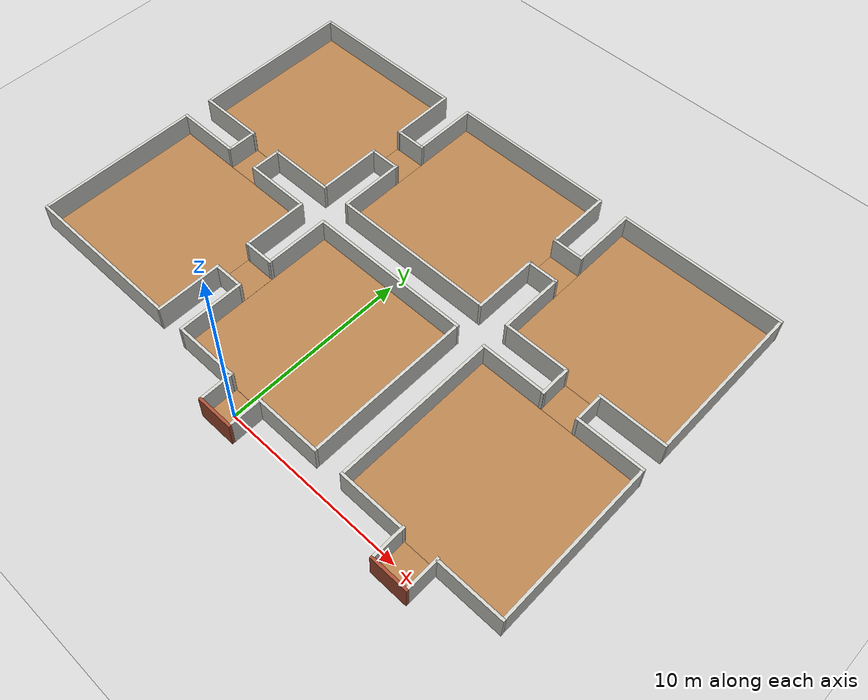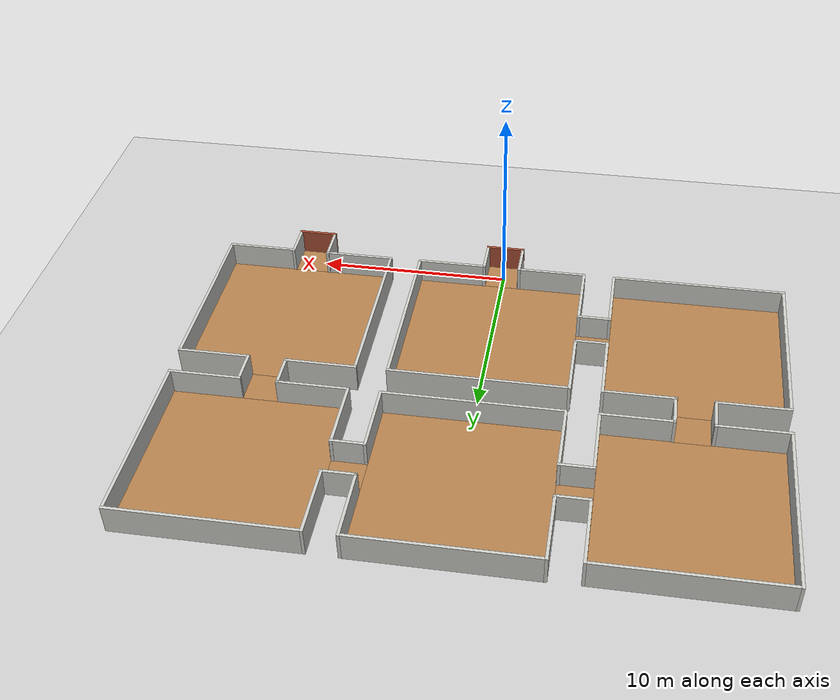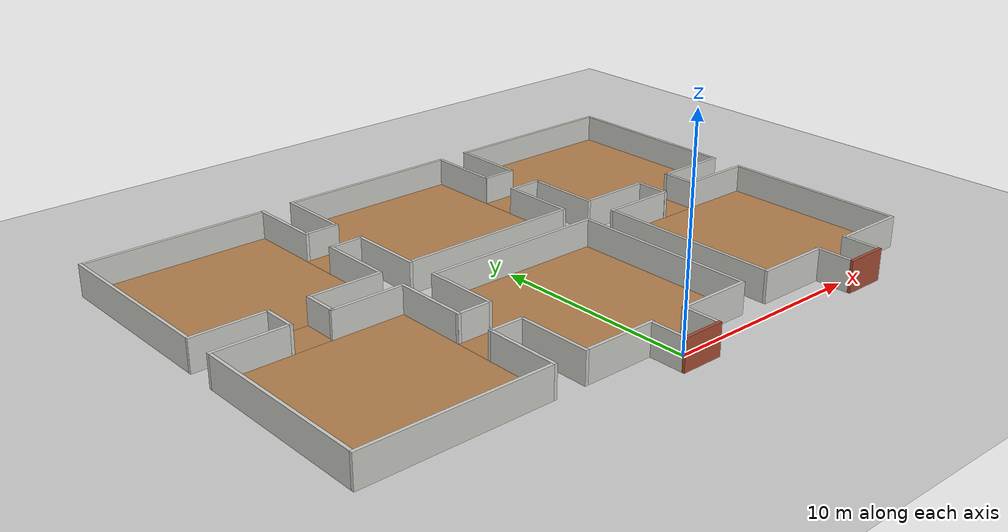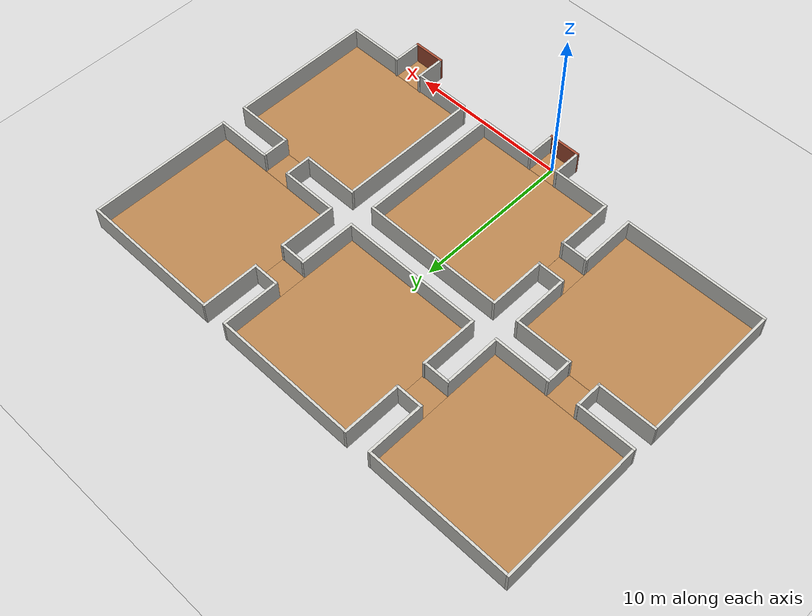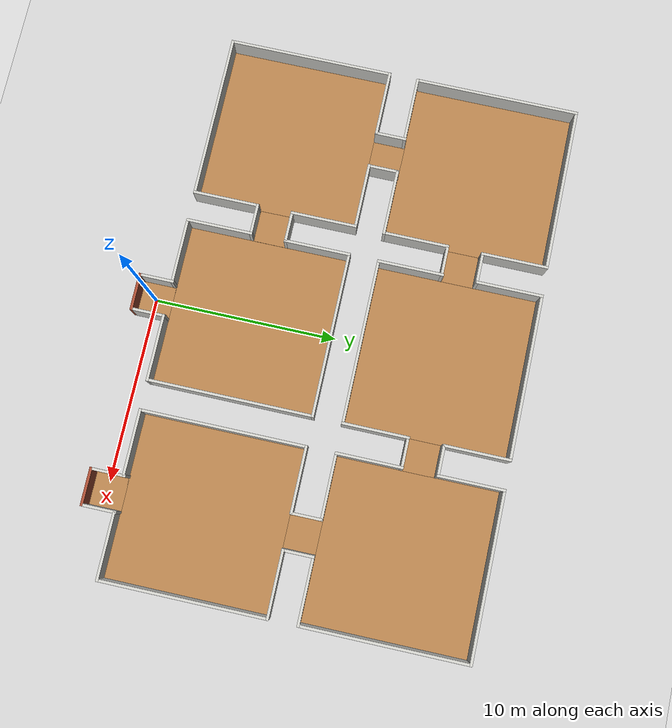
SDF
<sdf version="1.6">
 <world name="default">
  <light name="sun" type="directional">
   <pose>0 0 10 0 -0 0</pose>
   <diffuse>0.8 0.8 0.8 1</diffuse>
   <specular>0.1 0.1 0.1 1</specular>
   <attenuation>
    <range>1000</range>
    <constant>0.9</constant>
    <linear>0.01</linear>
    <quadratic>0.001</quadratic>
   </attenuation>
   <direction>-0.5 0.5 -1</direction>
  </light>
  <model name="ground_plane">
   <static>1</static>
   <link name="link">
    <collision name="collision">
     <geometry><plane><normal>0 0 1</normal><size>100 100</size></plane></geometry>
     <surface><friction><ode><mu>100</mu><mu2>50</mu2></ode></friction></surface>
    </collision>
    <visual name="visual">
     <cast_shadows>0</cast_shadows>
     <geometry><plane><normal>0 0 1</normal><size>100 100</size></plane></geometry>
     <material>
      <script><uri>file://media/materials/scripts/gazebo.material</uri><name>Gazebo/Grey</name></script>
     </material>
    </visual>
   </link>
  </model>
  <gravity>0 0 -9.8</gravity>
  <magnetic_field>6e-06 2.3e-05 -4.2e-05</magnetic_field>
  <atmosphere type="adiabatic"/>
  <physics name="default_physics" default="0" type="ode">
   <max_step_size>0.001</max_step_size>
   <real_time_factor>1</real_time_factor>
   <real_time_update_rate>1000</real_time_update_rate>
  </physics>
  <scene><ambient>0.4 0.4 0.4 1</ambient><background>0.7 0.7 0.7 1</background><shadows>1</shadows></scene>
  <spherical_coordinates>
   <surface_model>EARTH_WGS84</surface_model>
   <latitude_deg>0</latitude_deg>
   <longitude_deg>0</longitude_deg>
   <elevation>0</elevation>
   <heading_deg>0</heading_deg>
  </spherical_coordinates>
  <model name="nerve_end">
   <pose>0 0 0 0 -0 3.14159</pose>
   <link name="Wall_0">
    <collision name="Wall_0_Collision">
     <geometry><box><size>1.76 1.75 0.2</size></box></geometry>
     <pose>0 0 0.1 0 -0 0</pose>
    </collision>
    <visual name="Wall_0_Visual">
     <pose>0 0 0.1 0 -0 0</pose>
     <geometry><box><size>1.76 1.75 0.2</size></box></geometry>
     <material>
      <script><uri>file://media/materials/scripts/gazebo.material</uri><name>Gazebo/Wood</name></script>
      <ambient>1 0.764706 0.305882 1</ambient>
     </material>
    </visual>
    <pose>-0.009 -0.064 0 0 -0 0</pose>
   </link>
   <link name="Wall_2">
    <collision name="Wall_2_Collision">
     <geometry><box><size>1.8 0.15 1.5</size></box></geometry>
     <pose>0 0 0.75 0 -0 0</pose>
    </collision>
    <visual name="Wall_2_Visual">
     <pose>0 0 0.75 0 -0 0</pose>
     <geometry><box><size>1.8 0.15 1.5</size></box></geometry>
     <material>
      <script><uri>file://media/materials/scripts/gazebo.material</uri><name>Gazebo/CeilingTiled</name></script>
      <ambient>1 0.764706 0.305882 1</ambient>
     </material>
    </visual>
    <pose>-0.95 -0.065 0 0 0 -1.5708</pose>
   </link>
   <link name="Wall_4">
    <collision name="Wall_4_Collision">
     <geometry><box><size>1.8 0.15 1.5</size></box></geometry>
     <pose>0 0 0.75 0 -0 0</pose>
    </collision>
    <visual name="Wall_4_Visual">
     <pose>0 0 0.75 0 -0 0</pose>
     <geometry><box><size>1.8 0.15 1.5</size></box></geometry>
     <material>
      <script><uri>file://media/materials/scripts/gazebo.material</uri><name>Gazebo/CeilingTiled</name></script>
      <ambient>1 0.764706 0.305882 1</ambient>
     </material>
    </visual>
    <pose>0.95 -0.065 0 0 0 -1.5708</pose>
   </link>
   <link name="Wall_6">
    <collision name="Wall_6_Collision">
     <geometry><box><size>2.05 0.15 1.5</size></box></geometry>
     <pose>0 0 0.75 0 -0 0</pose>
    </collision>
    <visual name="Wall_6_Visual">
     <pose>0 0 0.75 0 -0 0</pose>
     <geometry><box><size>2.05 0.15 1.5</size></box></geometry>
     <material>
      <script><uri>file://media/materials/scripts/gazebo.material</uri><name>Gazebo/Bricks</name></script>
      <ambient>0.996078 0.47451 0.0196078 1</ambient>
     </material>
    </visual>
    <pose>0 0.89 0 0 -0 0</pose>
   </link>
   <static>1</static>
  </model>
  <model name="nerve_room_5x5ARENA_right">
   <pose>0.01035 5.32527 0 0 -0 0</pose>
   <link name="Wall_11">
    <collision name="Wall_11_Collision">
     <geometry><box><size>8.75 0.15 1.5</size></box></geometry>
     <pose>0 0 0.75 0 -0 0</pose>
    </collision>
    <visual name="Wall_11_Visual">
     <pose>0 0 0.75 0 -0 0</pose>
     <geometry><box><size>8.75 0.15 1.5</size></box></geometry>
     <material>
      <script><uri>file://media/materials/scripts/gazebo.material</uri><name>Gazebo/CeilingTiled</name></script>
      <ambient>1 0.764706 0.305882 1</ambient>
     </material>
    </visual>
    <pose>4.44912 -0.000431 0 0 0 -1.5708</pose>
   </link>
   <link name="Wall_13">
    <collision name="Wall_13_Collision">
     <geometry><box><size>3.65 0.15 1.5</size></box></geometry>
     <pose>0 0 0.75 0 -0 0</pose>
    </collision>
    <visual name="Wall_13_Visual">
     <pose>0 0 0.75 0 -0 0</pose>
     <geometry><box><size>3.65 0.15 1.5</size></box></geometry>
     <material>
      <script><uri>file://media/materials/scripts/gazebo.material</uri><name>Gazebo/CeilingTiled</name></script>
      <ambient>1 0.764706 0.305882 1</ambient>
     </material>
    </visual>
    <pose>-4.44961 2.70076 0 0 0 -1.5708</pose>
   </link>
   <link name="Wall_15">
    <collision name="Wall_15_Collision">
     <geometry><box><size>3.65 0.15 1.5</size></box></geometry>
     <pose>0 0 0.75 0 -0 0</pose>
    </collision>
    <visual name="Wall_15_Visual">
     <pose>0 0 0.75 0 -0 0</pose>
     <geometry><box><size>3.65 0.15 1.5</size></box></geometry>
     <material>
      <script><uri>file://media/materials/scripts/gazebo.material</uri><name>Gazebo/CeilingTiled</name></script>
      <ambient>1 0.764706 0.305882 1</ambient>
     </material>
    </visual>
    <pose>2.69961 -4.45076 0 0 -0 0</pose>
   </link>
   <link name="Wall_17">
    <collision name="Wall_17_Collision">
     <geometry><box><size>8.90028 0.15 1.5</size></box></geometry>
     <pose>0 0 0.75 0 -0 0</pose>
    </collision>
    <visual name="Wall_17_Visual">
     <pose>0 0 0.75 0 -0 0</pose>
     <geometry><box><size>8.90028 0.15 1.5</size></box></geometry>
     <material>
      <script><uri>file://media/materials/scripts/gazebo.material</uri><name>Gazebo/CeilingTiled</name></script>
      <ambient>1 0.764706 0.305882 1</ambient>
     </material>
    </visual>
    <pose>0.074346 4.45022 0 0 0 -6.5e-05</pose>
   </link>
   <link name="Wall_21">
    <collision name="Wall_21_Collision">
     <geometry><box><size>3.5 0.15 1.5</size></box></geometry>
     <pose>0 0 0.75 0 -0 0</pose>
    </collision>
    <visual name="Wall_21_Visual">
     <pose>0 0 0.75 0 -0 0</pose>
     <geometry><box><size>3.5 0.15 1.5</size></box></geometry>
     <material>
      <script><uri>file://media/materials/scripts/gazebo.material</uri><name>Gazebo/CeilingTiled</name></script>
      <ambient>1 0.764706 0.305882 1</ambient>
     </material>
    </visual>
    <pose>-2.62383 -4.4498 0 0 -0 0</pose>
   </link>
   <link name="Wall_25">
    <collision name="Wall_25_Collision">
     <geometry><box><size>3.65 0.15 1.5</size></box></geometry>
     <pose>0 0 0.75 0 -0 0</pose>
    </collision>
    <visual name="Wall_25_Visual">
     <pose>0 0 0.75 0 -0 0</pose>
     <geometry><box><size>3.65 0.15 1.5</size></box></geometry>
     <material>
      <script><uri>file://media/materials/scripts/gazebo.material</uri><name>Gazebo/CeilingTiled</name></script>
      <ambient>1 0.764706 0.305882 1</ambient>
     </material>
    </visual>
    <pose>-4.44941 -2.70044 0 0 0 -1.5708</pose>
   </link>
   <link name="Wall_6">
    <collision name="Wall_6_Collision">
     <geometry><box><size>8.76 8.75 0.2</size></box></geometry>
     <pose>0 0 0.1 0 -0 0</pose>
    </collision>
    <visual name="Wall_6_Visual">
     <pose>0 0 0.1 0 -0 0</pose>
     <geometry><box><size>8.76 8.75 0.2</size></box></geometry>
     <material>
      <script><uri>file://media/materials/scripts/gazebo.material</uri><name>Gazebo/Wood</name></script>
      <ambient>1 0.764706 0.305882 1</ambient>
     </material>
    </visual>
    <pose>0.000485 -0.004173 0 0 -0 1.5708</pose>
   </link>
   <static>1</static>
  </model>
  <model name="nerve_straight">
   <pose>-5.23966 5.3216 0 0 0 -1.5708</pose>
   <link name="Wall_0">
    <collision name="Wall_0_Collision">
     <geometry><box><size>1.76 1.75 0.2</size></box></geometry>
     <pose>0 0 0.1 0 -0 0</pose>
    </collision>
    <visual name="Wall_0_Visual">
     <pose>0 0 0.1 0 -0 0</pose>
     <geometry><box><size>1.76 1.75 0.2</size></box></geometry>
     <material>
      <script><uri>file://media/materials/scripts/gazebo.material</uri><name>Gazebo/Wood</name></script>
      <ambient>1 0.764706 0.305882 1</ambient>
     </material>
    </visual>
    <pose>0.005 -0.002 0 0 -0 3.14159</pose>
   </link>
   <link name="Wall_2">
    <collision name="Wall_2_Collision">
     <geometry><box><size>1.75 0.15 1.5</size></box></geometry>
     <pose>0 0 0.75 0 -0 0</pose>
    </collision>
    <visual name="Wall_2_Visual">
     <pose>0 0 0.75 0 -0 0</pose>
     <geometry><box><size>1.75 0.15 1.5</size></box></geometry>
     <material>
      <script><uri>file://media/materials/scripts/gazebo.material</uri><name>Gazebo/CeilingTiled</name></script>
      <ambient>1 0.764706 0.305882 1</ambient>
     </material>
    </visual>
    <pose>-0.955 0.002 0 0 0 -1.5708</pose>
   </link>
   <link name="Wall_4">
    <collision name="Wall_4_Collision">
     <geometry><box><size>1.75 0.15 1.5</size></box></geometry>
     <pose>0 0 0.75 0 -0 0</pose>
    </collision>
    <visual name="Wall_4_Visual">
     <pose>0 0 0.75 0 -0 0</pose>
     <geometry><box><size>1.75 0.15 1.5</size></box></geometry>
     <material>
      <script><uri>file://media/materials/scripts/gazebo.material</uri><name>Gazebo/CeilingTiled</name></script>
      <ambient>1 0.764706 0.305882 1</ambient>
     </material>
    </visual>
    <pose>0.955 0.002 0 0 0 -1.5708</pose>
   </link>
   <static>1</static>
  </model>
  <model name="nerve_room_5x5ARENA_right_0">
   <pose>-10.485 5.32444 0 0 -0 3.14159</pose>
   <link name="Wall_11">
    <collision name="Wall_11_Collision">
     <geometry><box><size>8.75 0.15 1.5</size></box></geometry>
     <pose>0 0 0.75 0 -0 0</pose>
    </collision>
    <visual name="Wall_11_Visual">
     <pose>0 0 0.75 0 -0 0</pose>
     <geometry><box><size>8.75 0.15 1.5</size></box></geometry>
     <material>
      <script><uri>file://media/materials/scripts/gazebo.material</uri><name>Gazebo/CeilingTiled</name></script>
      <ambient>1 0.764706 0.305882 1</ambient>
     </material>
    </visual>
    <pose>4.44912 -0.000431 0 0 0 -1.5708</pose>
   </link>
   <link name="Wall_13">
    <collision name="Wall_13_Collision">
     <geometry><box><size>3.65 0.15 1.5</size></box></geometry>
     <pose>0 0 0.75 0 -0 0</pose>
    </collision>
    <visual name="Wall_13_Visual">
     <pose>0 0 0.75 0 -0 0</pose>
     <geometry><box><size>3.65 0.15 1.5</size></box></geometry>
     <material>
      <script><uri>file://media/materials/scripts/gazebo.material</uri><name>Gazebo/CeilingTiled</name></script>
      <ambient>1 0.764706 0.305882 1</ambient>
     </material>
    </visual>
    <pose>-4.44961 2.70076 0 0 0 -1.5708</pose>
   </link>
   <link name="Wall_15">
    <collision name="Wall_15_Collision">
     <geometry><box><size>3.65 0.15 1.5</size></box></geometry>
     <pose>0 0 0.75 0 -0 0</pose>
    </collision>
    <visual name="Wall_15_Visual">
     <pose>0 0 0.75 0 -0 0</pose>
     <geometry><box><size>3.65 0.15 1.5</size></box></geometry>
     <material>
      <script><uri>file://media/materials/scripts/gazebo.material</uri><name>Gazebo/CeilingTiled</name></script>
      <ambient>1 0.764706 0.305882 1</ambient>
     </material>
    </visual>
    <pose>2.69961 -4.45076 0 0 -0 0</pose>
   </link>
   <link name="Wall_17">
    <collision name="Wall_17_Collision">
     <geometry><box><size>8.90028 0.15 1.5</size></box></geometry>
     <pose>0 0 0.75 0 -0 0</pose>
    </collision>
    <visual name="Wall_17_Visual">
     <pose>0 0 0.75 0 -0 0</pose>
     <geometry><box><size>8.90028 0.15 1.5</size></box></geometry>
     <material>
      <script><uri>file://media/materials/scripts/gazebo.material</uri><name>Gazebo/CeilingTiled</name></script>
      <ambient>1 0.764706 0.305882 1</ambient>
     </material>
    </visual>
    <pose>0.074346 4.45022 0 0 0 -6.5e-05</pose>
   </link>
   <link name="Wall_21">
    <collision name="Wall_21_Collision">
     <geometry><box><size>3.5 0.15 1.5</size></box></geometry>
     <pose>0 0 0.75 0 -0 0</pose>
    </collision>
    <visual name="Wall_21_Visual">
     <pose>0 0 0.75 0 -0 0</pose>
     <geometry><box><size>3.5 0.15 1.5</size></box></geometry>
     <material>
      <script><uri>file://media/materials/scripts/gazebo.material</uri><name>Gazebo/CeilingTiled</name></script>
      <ambient>1 0.764706 0.305882 1</ambient>
     </material>
    </visual>
    <pose>-2.62383 -4.4498 0 0 -0 0</pose>
   </link>
   <link name="Wall_25">
    <collision name="Wall_25_Collision">
     <geometry><box><size>3.65 0.15 1.5</size></box></geometry>
     <pose>0 0 0.75 0 -0 0</pose>
    </collision>
    <visual name="Wall_25_Visual">
     <pose>0 0 0.75 0 -0 0</pose>
     <geometry><box><size>3.65 0.15 1.5</size></box></geometry>
     <material>
      <script><uri>file://media/materials/scripts/gazebo.material</uri><name>Gazebo/CeilingTiled</name></script>
      <ambient>1 0.764706 0.305882 1</ambient>
     </material>
    </visual>
    <pose>-4.44941 -2.70044 0 0 0 -1.5708</pose>
   </link>
   <link name="Wall_6">
    <collision name="Wall_6_Collision">
     <geometry><box><size>8.76 8.75 0.2</size></box></geometry>
     <pose>0 0 0.1 0 -0 0</pose>
    </collision>
    <visual name="Wall_6_Visual">
     <pose>0 0 0.1 0 -0 0</pose>
     <geometry><box><size>8.76 8.75 0.2</size></box></geometry>
     <material>
      <script><uri>file://media/materials/scripts/gazebo.material</uri><name>Gazebo/Wood</name></script>
      <ambient>1 0.764706 0.305882 1</ambient>
     </material>
    </visual>
    <pose>0.000485 -0.004173 0 0 -0 1.5708</pose>
   </link>
   <static>1</static>
  </model>
  <model name="nerve_straight_clone">
   <pose>-10.4732 10.573 0 0 -0 0</pose>
   <link name="Wall_0">
    <collision name="Wall_0_Collision">
     <geometry><box><size>1.76 1.75 0.2</size></box></geometry>
     <pose>0 0 0.1 0 -0 0</pose>
    </collision>
    <visual name="Wall_0_Visual">
     <pose>0 0 0.1 0 -0 0</pose>
     <geometry><box><size>1.76 1.75 0.2</size></box></geometry>
     <material>
      <script><uri>file://media/materials/scripts/gazebo.material</uri><name>Gazebo/Wood</name></script>
      <ambient>1 0.764706 0.305882 1</ambient>
     </material>
    </visual>
    <pose>0.005 -0.002 0 0 -0 3.14159</pose>
   </link>
   <link name="Wall_2">
    <collision name="Wall_2_Collision">
     <geometry><box><size>1.75 0.15 1.5</size></box></geometry>
     <pose>0 0 0.75 0 -0 0</pose>
    </collision>
    <visual name="Wall_2_Visual">
     <pose>0 0 0.75 0 -0 0</pose>
     <geometry><box><size>1.75 0.15 1.5</size></box></geometry>
     <material>
      <script><uri>file://media/materials/scripts/gazebo.material</uri><name>Gazebo/CeilingTiled</name></script>
      <ambient>1 0.764706 0.305882 1</ambient>
     </material>
    </visual>
    <pose>-0.955 0.002 0 0 0 -1.5708</pose>
   </link>
   <link name="Wall_4">
    <collision name="Wall_4_Collision">
     <geometry><box><size>1.75 0.15 1.5</size></box></geometry>
     <pose>0 0 0.75 0 -0 0</pose>
    </collision>
    <visual name="Wall_4_Visual">
     <pose>0 0 0.75 0 -0 0</pose>
     <geometry><box><size>1.75 0.15 1.5</size></box></geometry>
     <material>
      <script><uri>file://media/materials/scripts/gazebo.material</uri><name>Gazebo/CeilingTiled</name></script>
      <ambient>1 0.764706 0.305882 1</ambient>
     </material>
    </visual>
    <pose>0.955 0.002 0 0 0 -1.5708</pose>
   </link>
   <static>1</static>
  </model>
  <model name="nerve_room_5x5ARENA_right_clone">
   <pose>-10.4631 15.8033 0 0 -0 1.5708</pose>
   <link name="Wall_11">
    <collision name="Wall_11_Collision">
     <geometry><box><size>8.75 0.15 1.5</size></box></geometry>
     <pose>0 0 0.75 0 -0 0</pose>
    </collision>
    <visual name="Wall_11_Visual">
     <pose>0 0 0.75 0 -0 0</pose>
     <geometry><box><size>8.75 0.15 1.5</size></box></geometry>
     <material>
      <script><uri>file://media/materials/scripts/gazebo.material</uri><name>Gazebo/CeilingTiled</name></script>
      <ambient>1 0.764706 0.305882 1</ambient>
     </material>
    </visual>
    <pose>4.44912 -0.000431 0 0 0 -1.5708</pose>
   </link>
   <link name="Wall_13">
    <collision name="Wall_13_Collision">
     <geometry><box><size>3.65 0.15 1.5</size></box></geometry>
     <pose>0 0 0.75 0 -0 0</pose>
    </collision>
    <visual name="Wall_13_Visual">
     <pose>0 0 0.75 0 -0 0</pose>
     <geometry><box><size>3.65 0.15 1.5</size></box></geometry>
     <material>
      <script><uri>file://media/materials/scripts/gazebo.material</uri><name>Gazebo/CeilingTiled</name></script>
      <ambient>1 0.764706 0.305882 1</ambient>
     </material>
    </visual>
    <pose>-4.44961 2.70076 0 0 0 -1.5708</pose>
   </link>
   <link name="Wall_15">
    <collision name="Wall_15_Collision">
     <geometry><box><size>3.65 0.15 1.5</size></box></geometry>
     <pose>0 0 0.75 0 -0 0</pose>
    </collision>
    <visual name="Wall_15_Visual">
     <pose>0 0 0.75 0 -0 0</pose>
     <geometry><box><size>3.65 0.15 1.5</size></box></geometry>
     <material>
      <script><uri>file://media/materials/scripts/gazebo.material</uri><name>Gazebo/CeilingTiled</name></script>
      <ambient>1 0.764706 0.305882 1</ambient>
     </material>
    </visual>
    <pose>2.69961 -4.45076 0 0 -0 0</pose>
   </link>
   <link name="Wall_17">
    <collision name="Wall_17_Collision">
     <geometry><box><size>8.90028 0.15 1.5</size></box></geometry>
     <pose>0 0 0.75 0 -0 0</pose>
    </collision>
    <visual name="Wall_17_Visual">
     <pose>0 0 0.75 0 -0 0</pose>
     <geometry><box><size>8.90028 0.15 1.5</size></box></geometry>
     <material>
      <script><uri>file://media/materials/scripts/gazebo.material</uri><name>Gazebo/CeilingTiled</name></script>
      <ambient>1 0.764706 0.305882 1</ambient>
     </material>
    </visual>
    <pose>0.074346 4.45022 0 0 0 -6.5e-05</pose>
   </link>
   <link name="Wall_21">
    <collision name="Wall_21_Collision">
     <geometry><box><size>3.5 0.15 1.5</size></box></geometry>
     <pose>0 0 0.75 0 -0 0</pose>
    </collision>
    <visual name="Wall_21_Visual">
     <pose>0 0 0.75 0 -0 0</pose>
     <geometry><box><size>3.5 0.15 1.5</size></box></geometry>
     <material>
      <script><uri>file://media/materials/scripts/gazebo.material</uri><name>Gazebo/CeilingTiled</name></script>
      <ambient>1 0.764706 0.305882 1</ambient>
     </material>
    </visual>
    <pose>-2.62383 -4.4498 0 0 -0 0</pose>
   </link>
   <link name="Wall_25">
    <collision name="Wall_25_Collision">
     <geometry><box><size>3.65 0.15 1.5</size></box></geometry>
     <pose>0 0 0.75 0 -0 0</pose>
    </collision>
    <visual name="Wall_25_Visual">
     <pose>0 0 0.75 0 -0 0</pose>
     <geometry><box><size>3.65 0.15 1.5</size></box></geometry>
     <material>
      <script><uri>file://media/materials/scripts/gazebo.material</uri><name>Gazebo/CeilingTiled</name></script>
      <ambient>1 0.764706 0.305882 1</ambient>
     </material>
    </visual>
    <pose>-4.44941 -2.70044 0 0 0 -1.5708</pose>
   </link>
   <link name="Wall_6">
    <collision name="Wall_6_Collision">
     <geometry><box><size>8.76 8.75 0.2</size></box></geometry>
     <pose>0 0 0.1 0 -0 0</pose>
    </collision>
    <visual name="Wall_6_Visual">
     <pose>0 0 0.1 0 -0 0</pose>
     <geometry><box><size>8.76 8.75 0.2</size></box></geometry>
     <material>
      <script><uri>file://media/materials/scripts/gazebo.material</uri><name>Gazebo/Wood</name></script>
      <ambient>1 0.764706 0.305882 1</ambient>
     </material>
    </visual>
    <pose>0.000485 -0.004173 0 0 -0 1.5708</pose>
   </link>
   <static>1</static>
  </model>
  <model name="nerve_room_5x5ARENA_straight">
   <pose>0.031545 15.8425 0 0 -0 1.5708</pose>
   <link name="Wall_11">
    <collision name="Wall_11_Collision">
     <geometry><box><size>8.75 0.15 1.5</size></box></geometry>
     <pose>0 0 0.75 0 -0 0</pose>
    </collision>
    <visual name="Wall_11_Visual">
     <pose>0 0 0.75 0 -0 0</pose>
     <geometry><box><size>8.75 0.15 1.5</size></box></geometry>
     <material>
      <script><uri>file://media/materials/scripts/gazebo.material</uri><name>Gazebo/CeilingTiled</name></script>
      <ambient>1 0.764706 0.305882 1</ambient>
     </material>
    </visual>
    <pose>4.4489 -0.000387 0 0 0 -1.5708</pose>
   </link>
   <link name="Wall_13">
    <collision name="Wall_13_Collision">
     <geometry><box><size>8.75 0.15 1.5</size></box></geometry>
     <pose>0 0 0.75 0 -0 0</pose>
    </collision>
    <visual name="Wall_13_Visual">
     <pose>0 0 0.75 0 -0 0</pose>
     <geometry><box><size>8.75 0.15 1.5</size></box></geometry>
     <material>
      <script><uri>file://media/materials/scripts/gazebo.material</uri><name>Gazebo/CeilingTiled</name></script>
      <ambient>1 0.764706 0.305882 1</ambient>
     </material>
    </visual>
    <pose>-4.44913 0.000846 0 0 0 -1.5708</pose>
   </link>
   <link name="Wall_15">
    <collision name="Wall_15_Collision">
     <geometry><box><size>3.65 0.15 1.5</size></box></geometry>
     <pose>0 0 0.75 0 -0 0</pose>
    </collision>
    <visual name="Wall_15_Visual">
     <pose>0 0 0.75 0 -0 0</pose>
     <geometry><box><size>3.65 0.15 1.5</size></box></geometry>
     <material>
      <script><uri>file://media/materials/scripts/gazebo.material</uri><name>Gazebo/CeilingTiled</name></script>
      <ambient>1 0.764706 0.305882 1</ambient>
     </material>
    </visual>
    <pose>2.69939 -4.45071 0 0 -0 0</pose>
   </link>
   <link name="Wall_17">
    <collision name="Wall_17_Collision">
     <geometry><box><size>3.65 0.15 1.5</size></box></geometry>
     <pose>0 0 0.75 0 -0 0</pose>
    </collision>
    <visual name="Wall_17_Visual">
     <pose>0 0 0.75 0 -0 0</pose>
     <geometry><box><size>3.65 0.15 1.5</size></box></geometry>
     <material>
      <script><uri>file://media/materials/scripts/gazebo.material</uri><name>Gazebo/CeilingTiled</name></script>
      <ambient>1 0.764706 0.305882 1</ambient>
     </material>
    </visual>
    <pose>-2.69939 4.45071 0 0 -0 0</pose>
   </link>
   <link name="Wall_19">
    <collision name="Wall_19_Collision">
     <geometry><box><size>3.65 0.15 1.5</size></box></geometry>
     <pose>0 0 0.75 0 -0 0</pose>
    </collision>
    <visual name="Wall_19_Visual">
     <pose>0 0 0.75 0 -0 0</pose>
     <geometry><box><size>3.65 0.15 1.5</size></box></geometry>
     <material>
      <script><uri>file://media/materials/scripts/gazebo.material</uri><name>Gazebo/CeilingTiled</name></script>
      <ambient>1 0.764706 0.305882 1</ambient>
     </material>
    </visual>
    <pose>2.69903 4.44972 0 0 -0 0</pose>
   </link>
   <link name="Wall_21">
    <collision name="Wall_21_Collision">
     <geometry><box><size>3.65 0.15 1.5</size></box></geometry>
     <pose>0 0 0.75 0 -0 0</pose>
    </collision>
    <visual name="Wall_21_Visual">
     <pose>0 0 0.75 0 -0 0</pose>
     <geometry><box><size>3.65 0.15 1.5</size></box></geometry>
     <material>
      <script><uri>file://media/materials/scripts/gazebo.material</uri><name>Gazebo/CeilingTiled</name></script>
      <ambient>1 0.764706 0.305882 1</ambient>
     </material>
    </visual>
    <pose>-2.69904 -4.44976 0 0 -0 0</pose>
   </link>
   <link name="Wall_6">
    <collision name="Wall_6_Collision">
     <geometry><box><size>8.76 8.75 0.2</size></box></geometry>
     <pose>0 0 0.1 0 -0 0</pose>
    </collision>
    <visual name="Wall_6_Visual">
     <pose>0 0 0.1 0 -0 0</pose>
     <geometry><box><size>8.76 8.75 0.2</size></box></geometry>
     <material>
      <script><uri>file://media/materials/scripts/gazebo.material</uri><name>Gazebo/Wood</name></script>
      <ambient>1 0.764706 0.305882 1</ambient>
     </material>
    </visual>
    <pose>0.000265 -0.004129 0 0 -0 1.5708</pose>
   </link>
   <static>1</static>
  </model>
  <model name="nerve_room_5x5ARENA_right_clone_clone">
   <pose>10.5244 15.8401 0 0 -0 0</pose>
   <link name="Wall_11">
    <collision name="Wall_11_Collision">
     <geometry><box><size>8.75 0.15 1.5</size></box></geometry>
     <pose>0 0 0.75 0 -0 0</pose>
    </collision>
    <visual name="Wall_11_Visual">
     <pose>0 0 0.75 0 -0 0</pose>
     <geometry><box><size>8.75 0.15 1.5</size></box></geometry>
     <material>
      <script><uri>file://media/materials/scripts/gazebo.material</uri><name>Gazebo/CeilingTiled</name></script>
      <ambient>1 0.764706 0.305882 1</ambient>
     </material>
    </visual>
    <pose>4.44912 -0.000431 0 0 0 -1.5708</pose>
   </link>
   <link name="Wall_13">
    <collision name="Wall_13_Collision">
     <geometry><box><size>3.65 0.15 1.5</size></box></geometry>
     <pose>0 0 0.75 0 -0 0</pose>
    </collision>
    <visual name="Wall_13_Visual">
     <pose>0 0 0.75 0 -0 0</pose>
     <geometry><box><size>3.65 0.15 1.5</size></box></geometry>
     <material>
      <script><uri>file://media/materials/scripts/gazebo.material</uri><name>Gazebo/CeilingTiled</name></script>
      <ambient>1 0.764706 0.305882 1</ambient>
     </material>
    </visual>
    <pose>-4.44961 2.70076 0 0 0 -1.5708</pose>
   </link>
   <link name="Wall_15">
    <collision name="Wall_15_Collision">
     <geometry><box><size>3.65 0.15 1.5</size></box></geometry>
     <pose>0 0 0.75 0 -0 0</pose>
    </collision>
    <visual name="Wall_15_Visual">
     <pose>0 0 0.75 0 -0 0</pose>
     <geometry><box><size>3.65 0.15 1.5</size></box></geometry>
     <material>
      <script><uri>file://media/materials/scripts/gazebo.material</uri><name>Gazebo/CeilingTiled</name></script>
      <ambient>1 0.764706 0.305882 1</ambient>
     </material>
    </visual>
    <pose>2.69961 -4.45076 0 0 -0 0</pose>
   </link>
   <link name="Wall_17">
    <collision name="Wall_17_Collision">
     <geometry><box><size>8.90028 0.15 1.5</size></box></geometry>
     <pose>0 0 0.75 0 -0 0</pose>
    </collision>
    <visual name="Wall_17_Visual">
     <pose>0 0 0.75 0 -0 0</pose>
     <geometry><box><size>8.90028 0.15 1.5</size></box></geometry>
     <material>
      <script><uri>file://media/materials/scripts/gazebo.material</uri><name>Gazebo/CeilingTiled</name></script>
      <ambient>1 0.764706 0.305882 1</ambient>
     </material>
    </visual>
    <pose>0.074346 4.45022 0 0 0 -6.5e-05</pose>
   </link>
   <link name="Wall_21">
    <collision name="Wall_21_Collision">
     <geometry><box><size>3.5 0.15 1.5</size></box></geometry>
     <pose>0 0 0.75 0 -0 0</pose>
    </collision>
    <visual name="Wall_21_Visual">
     <pose>0 0 0.75 0 -0 0</pose>
     <geometry><box><size>3.5 0.15 1.5</size></box></geometry>
     <material>
      <script><uri>file://media/materials/scripts/gazebo.material</uri><name>Gazebo/CeilingTiled</name></script>
      <ambient>1 0.764706 0.305882 1</ambient>
     </material>
    </visual>
    <pose>-2.62383 -4.4498 0 0 -0 0</pose>
   </link>
   <link name="Wall_25">
    <collision name="Wall_25_Collision">
     <geometry><box><size>3.65 0.15 1.5</size></box></geometry>
     <pose>0 0 0.75 0 -0 0</pose>
    </collision>
    <visual name="Wall_25_Visual">
     <pose>0 0 0.75 0 -0 0</pose>
     <geometry><box><size>3.65 0.15 1.5</size></box></geometry>
     <material>
      <script><uri>file://media/materials/scripts/gazebo.material</uri><name>Gazebo/CeilingTiled</name></script>
      <ambient>1 0.764706 0.305882 1</ambient>
     </material>
    </visual>
    <pose>-4.44941 -2.70044 0 0 0 -1.5708</pose>
   </link>
   <link name="Wall_6">
    <collision name="Wall_6_Collision">
     <geometry><box><size>8.76 8.75 0.2</size></box></geometry>
     <pose>0 0 0.1 0 -0 0</pose>
    </collision>
    <visual name="Wall_6_Visual">
     <pose>0 0 0.1 0 -0 0</pose>
     <geometry><box><size>8.76 8.75 0.2</size></box></geometry>
     <material>
      <script><uri>file://media/materials/scripts/gazebo.material</uri><name>Gazebo/Wood</name></script>
      <ambient>1 0.764706 0.305882 1</ambient>
     </material>
    </visual>
    <pose>0.000485 -0.004173 0 0 -0 1.5708</pose>
   </link>
   <static>1</static>
  </model>
  <model name="nerve_room_5x5ARENA_straight_clone">
   <pose>10.535 5.35033 0 0 -0 0</pose>
   <link name="Wall_11">
    <collision name="Wall_11_Collision">
     <geometry><box><size>8.75 0.15 1.5</size></box></geometry>
     <pose>0 0 0.75 0 -0 0</pose>
    </collision>
    <visual name="Wall_11_Visual">
     <pose>0 0 0.75 0 -0 0</pose>
     <geometry><box><size>8.75 0.15 1.5</size></box></geometry>
     <material>
      <script><uri>file://media/materials/scripts/gazebo.material</uri><name>Gazebo/CeilingTiled</name></script>
      <ambient>1 0.764706 0.305882 1</ambient>
     </material>
    </visual>
    <pose>4.4489 -0.000387 0 0 0 -1.5708</pose>
   </link>
   <link name="Wall_13">
    <collision name="Wall_13_Collision">
     <geometry><box><size>8.75 0.15 1.5</size></box></geometry>
     <pose>0 0 0.75 0 -0 0</pose>
    </collision>
    <visual name="Wall_13_Visual">
     <pose>0 0 0.75 0 -0 0</pose>
     <geometry><box><size>8.75 0.15 1.5</size></box></geometry>
     <material>
      <script><uri>file://media/materials/scripts/gazebo.material</uri><name>Gazebo/CeilingTiled</name></script>
      <ambient>1 0.764706 0.305882 1</ambient>
     </material>
    </visual>
    <pose>-4.44913 0.000846 0 0 0 -1.5708</pose>
   </link>
   <link name="Wall_15">
    <collision name="Wall_15_Collision">
     <geometry><box><size>3.65 0.15 1.5</size></box></geometry>
     <pose>0 0 0.75 0 -0 0</pose>
    </collision>
    <visual name="Wall_15_Visual">
     <pose>0 0 0.75 0 -0 0</pose>
     <geometry><box><size>3.65 0.15 1.5</size></box></geometry>
     <material>
      <script><uri>file://media/materials/scripts/gazebo.material</uri><name>Gazebo/CeilingTiled</name></script>
      <ambient>1 0.764706 0.305882 1</ambient>
     </material>
    </visual>
    <pose>2.69939 -4.45071 0 0 -0 0</pose>
   </link>
   <link name="Wall_17">
    <collision name="Wall_17_Collision">
     <geometry><box><size>3.65 0.15 1.5</size></box></geometry>
     <pose>0 0 0.75 0 -0 0</pose>
    </collision>
    <visual name="Wall_17_Visual">
     <pose>0 0 0.75 0 -0 0</pose>
     <geometry><box><size>3.65 0.15 1.5</size></box></geometry>
     <material>
      <script><uri>file://media/materials/scripts/gazebo.material</uri><name>Gazebo/CeilingTiled</name></script>
      <ambient>1 0.764706 0.305882 1</ambient>
     </material>
    </visual>
    <pose>-2.69939 4.45071 0 0 -0 0</pose>
   </link>
   <link name="Wall_19">
    <collision name="Wall_19_Collision">
     <geometry><box><size>3.65 0.15 1.5</size></box></geometry>
     <pose>0 0 0.75 0 -0 0</pose>
    </collision>
    <visual name="Wall_19_Visual">
     <pose>0 0 0.75 0 -0 0</pose>
     <geometry><box><size>3.65 0.15 1.5</size></box></geometry>
     <material>
      <script><uri>file://media/materials/scripts/gazebo.material</uri><name>Gazebo/CeilingTiled</name></script>
      <ambient>1 0.764706 0.305882 1</ambient>
     </material>
    </visual>
    <pose>2.69903 4.44972 0 0 -0 0</pose>
   </link>
   <link name="Wall_21">
    <collision name="Wall_21_Collision">
     <geometry><box><size>3.65 0.15 1.5</size></box></geometry>
     <pose>0 0 0.75 0 -0 0</pose>
    </collision>
    <visual name="Wall_21_Visual">
     <pose>0 0 0.75 0 -0 0</pose>
     <geometry><box><size>3.65 0.15 1.5</size></box></geometry>
     <material>
      <script><uri>file://media/materials/scripts/gazebo.material</uri><name>Gazebo/CeilingTiled</name></script>
      <ambient>1 0.764706 0.305882 1</ambient>
     </material>
    </visual>
    <pose>-2.69904 -4.44976 0 0 -0 0</pose>
   </link>
   <link name="Wall_6">
    <collision name="Wall_6_Collision">
     <geometry><box><size>8.76 8.75 0.2</size></box></geometry>
     <pose>0 0 0.1 0 -0 0</pose>
    </collision>
    <visual name="Wall_6_Visual">
     <pose>0 0 0.1 0 -0 0</pose>
     <geometry><box><size>8.76 8.75 0.2</size></box></geometry>
     <material>
      <script><uri>file://media/materials/scripts/gazebo.material</uri><name>Gazebo/Wood</name></script>
      <ambient>1 0.764706 0.305882 1</ambient>
     </material>
    </visual>
    <pose>0.000265 -0.004129 0 0 -0 1.5708</pose>
   </link>
   <static>1</static>
  </model>
  <model name="nerve_end_clone">
   <pose>10.534 0.059159 0 0 -0 3.14159</pose>
   <link name="Wall_0">
    <collision name="Wall_0_Collision">
     <geometry><box><size>1.76 1.75 0.2</size></box></geometry>
     <pose>0 0 0.1 0 -0 0</pose>
    </collision>
    <visual name="Wall_0_Visual">
     <pose>0 0 0.1 0 -0 0</pose>
     <geometry><box><size>1.76 1.75 0.2</size></box></geometry>
     <material>
      <script><uri>file://media/materials/scripts/gazebo.material</uri><name>Gazebo/Wood</name></script>
      <ambient>1 0.764706 0.305882 1</ambient>
     </material>
    </visual>
    <pose>-0.009 -0.064 0 0 -0 0</pose>
   </link>
   <link name="Wall_2">
    <collision name="Wall_2_Collision">
     <geometry><box><size>1.8 0.15 1.5</size></box></geometry>
     <pose>0 0 0.75 0 -0 0</pose>
    </collision>
    <visual name="Wall_2_Visual">
     <pose>0 0 0.75 0 -0 0</pose>
     <geometry><box><size>1.8 0.15 1.5</size></box></geometry>
     <material>
      <script><uri>file://media/materials/scripts/gazebo.material</uri><name>Gazebo/CeilingTiled</name></script>
      <ambient>1 0.764706 0.305882 1</ambient>
     </material>
    </visual>
    <pose>-0.95 -0.065 0 0 0 -1.5708</pose>
   </link>
   <link name="Wall_4">
    <collision name="Wall_4_Collision">
     <geometry><box><size>1.8 0.15 1.5</size></box></geometry>
     <pose>0 0 0.75 0 -0 0</pose>
    </collision>
    <visual name="Wall_4_Visual">
     <pose>0 0 0.75 0 -0 0</pose>
     <geometry><box><size>1.8 0.15 1.5</size></box></geometry>
     <material>
      <script><uri>file://media/materials/scripts/gazebo.material</uri><name>Gazebo/CeilingTiled</name></script>
      <ambient>1 0.764706 0.305882 1</ambient>
     </material>
    </visual>
    <pose>0.95 -0.065 0 0 0 -1.5708</pose>
   </link>
   <link name="Wall_6">
    <collision name="Wall_6_Collision">
     <geometry><box><size>2.05 0.15 1.5</size></box></geometry>
     <pose>0 0 0.75 0 -0 0</pose>
    </collision>
    <visual name="Wall_6_Visual">
     <pose>0 0 0.75 0 -0 0</pose>
     <geometry><box><size>2.05 0.15 1.5</size></box></geometry>
     <material>
      <script><uri>file://media/materials/scripts/gazebo.material</uri><name>Gazebo/Bricks</name></script>
      <ambient>0.996078 0.47451 0.0196078 1</ambient>
     </material>
    </visual>
    <pose>0 0.89 0 0 -0 0</pose>
   </link>
   <static>1</static>
  </model>
  <model name="nerve_straight_clone_clone">
   <pose>-5.21273 15.8107 0 0 0 -1.5708</pose>
   <link name="Wall_0">
    <collision name="Wall_0_Collision">
     <geometry><box><size>1.76 1.75 0.2</size></box></geometry>
     <pose>0 0 0.1 0 -0 0</pose>
    </collision>
    <visual name="Wall_0_Visual">
     <pose>0 0 0.1 0 -0 0</pose>
     <geometry><box><size>1.76 1.75 0.2</size></box></geometry>
     <material>
      <script><uri>file://media/materials/scripts/gazebo.material</uri><name>Gazebo/Wood</name></script>
      <ambient>1 0.764706 0.305882 1</ambient>
     </material>
    </visual>
    <pose>0.005 -0.002 0 0 -0 3.14159</pose>
   </link>
   <link name="Wall_2">
    <collision name="Wall_2_Collision">
     <geometry><box><size>1.75 0.15 1.5</size></box></geometry>
     <pose>0 0 0.75 0 -0 0</pose>
    </collision>
    <visual name="Wall_2_Visual">
     <pose>0 0 0.75 0 -0 0</pose>
     <geometry><box><size>1.75 0.15 1.5</size></box></geometry>
     <material>
      <script><uri>file://media/materials/scripts/gazebo.material</uri><name>Gazebo/CeilingTiled</name></script>
      <ambient>1 0.764706 0.305882 1</ambient>
     </material>
    </visual>
    <pose>-0.955 0.002 0 0 0 -1.5708</pose>
   </link>
   <link name="Wall_4">
    <collision name="Wall_4_Collision">
     <geometry><box><size>1.75 0.15 1.5</size></box></geometry>
     <pose>0 0 0.75 0 -0 0</pose>
    </collision>
    <visual name="Wall_4_Visual">
     <pose>0 0 0.75 0 -0 0</pose>
     <geometry><box><size>1.75 0.15 1.5</size></box></geometry>
     <material>
      <script><uri>file://media/materials/scripts/gazebo.material</uri><name>Gazebo/CeilingTiled</name></script>
      <ambient>1 0.764706 0.305882 1</ambient>
     </material>
    </visual>
    <pose>0.955 0.002 0 0 0 -1.5708</pose>
   </link>
   <static>1</static>
  </model>
  <model name="nerve_straight_clone_clone_0">
   <pose>5.28572 15.8348 0 0 0 -1.5708</pose>
   <link name="Wall_0">
    <collision name="Wall_0_Collision">
     <geometry><box><size>1.76 1.75 0.2</size></box></geometry>
     <pose>0 0 0.1 0 -0 0</pose>
    </collision>
    <visual name="Wall_0_Visual">
     <pose>0 0 0.1 0 -0 0</pose>
     <geometry><box><size>1.76 1.75 0.2</size></box></geometry>
     <material>
      <script><uri>file://media/materials/scripts/gazebo.material</uri><name>Gazebo/Wood</name></script>
      <ambient>1 0.764706 0.305882 1</ambient>
     </material>
    </visual>
    <pose>0.005 -0.002 0 0 -0 3.14159</pose>
   </link>
   <link name="Wall_2">
    <collision name="Wall_2_Collision">
     <geometry><box><size>1.75 0.15 1.5</size></box></geometry>
     <pose>0 0 0.75 0 -0 0</pose>
    </collision>
    <visual name="Wall_2_Visual">
     <pose>0 0 0.75 0 -0 0</pose>
     <geometry><box><size>1.75 0.15 1.5</size></box></geometry>
     <material>
      <script><uri>file://media/materials/scripts/gazebo.material</uri><name>Gazebo/CeilingTiled</name></script>
      <ambient>1 0.764706 0.305882 1</ambient>
     </material>
    </visual>
    <pose>-0.955 0.002 0 0 0 -1.5708</pose>
   </link>
   <link name="Wall_4">
    <collision name="Wall_4_Collision">
     <geometry><box><size>1.75 0.15 1.5</size></box></geometry>
     <pose>0 0 0.75 0 -0 0</pose>
    </collision>
    <visual name="Wall_4_Visual">
     <pose>0 0 0.75 0 -0 0</pose>
     <geometry><box><size>1.75 0.15 1.5</size></box></geometry>
     <material>
      <script><uri>file://media/materials/scripts/gazebo.material</uri><name>Gazebo/CeilingTiled</name></script>
      <ambient>1 0.764706 0.305882 1</ambient>
     </material>
    </visual>
    <pose>0.955 0.002 0 0 0 -1.5708</pose>
   </link>
   <static>1</static>
  </model>
  <model name="nerve_straight_clone_clone_1">
   <pose>10.5284 10.5852 0 0 -0 0</pose>
   <link name="Wall_0">
    <collision name="Wall_0_Collision">
     <geometry><box><size>1.76 1.75 0.2</size></box></geometry>
     <pose>0 0 0.1 0 -0 0</pose>
    </collision>
    <visual name="Wall_0_Visual">
     <pose>0 0 0.1 0 -0 0</pose>
     <geometry><box><size>1.76 1.75 0.2</size></box></geometry>
     <material>
      <script><uri>file://media/materials/scripts/gazebo.material</uri><name>Gazebo/Wood</name></script>
      <ambient>1 0.764706 0.305882 1</ambient>
     </material>
    </visual>
    <pose>0.005 -0.002 0 0 -0 3.14159</pose>
   </link>
   <link name="Wall_2">
    <collision name="Wall_2_Collision">
     <geometry><box><size>1.75 0.15 1.5</size></box></geometry>
     <pose>0 0 0.75 0 -0 0</pose>
    </collision>
    <visual name="Wall_2_Visual">
     <pose>0 0 0.75 0 -0 0</pose>
     <geometry><box><size>1.75 0.15 1.5</size></box></geometry>
     <material>
      <script><uri>file://media/materials/scripts/gazebo.material</uri><name>Gazebo/CeilingTiled</name></script>
      <ambient>1 0.764706 0.305882 1</ambient>
     </material>
    </visual>
    <pose>-0.955 0.002 0 0 0 -1.5708</pose>
   </link>
   <link name="Wall_4">
    <collision name="Wall_4_Collision">
     <geometry><box><size>1.75 0.15 1.5</size></box></geometry>
     <pose>0 0 0.75 0 -0 0</pose>
    </collision>
    <visual name="Wall_4_Visual">
     <pose>0 0 0.75 0 -0 0</pose>
     <geometry><box><size>1.75 0.15 1.5</size></box></geometry>
     <material>
      <script><uri>file://media/materials/scripts/gazebo.material</uri><name>Gazebo/CeilingTiled</name></script>
      <ambient>1 0.764706 0.305882 1</ambient>
     </material>
    </visual>
    <pose>0.955 0.002 0 0 0 -1.5708</pose>
   </link>
   <static>1</static>
  </model>
 </world>
</sdf>
